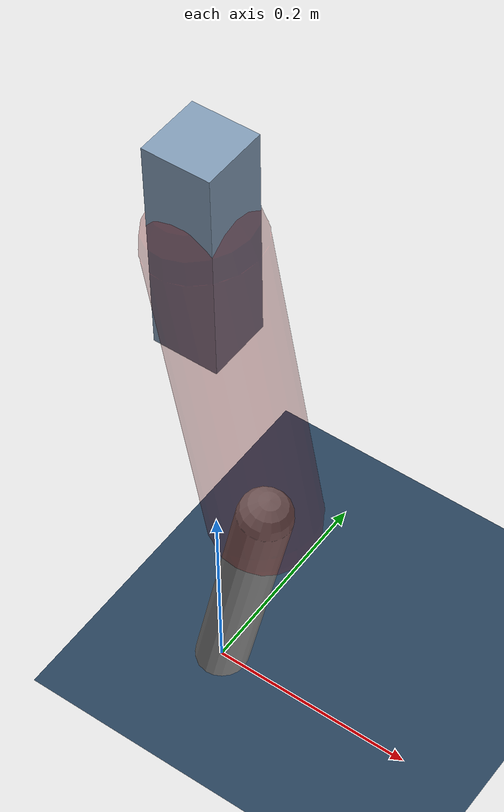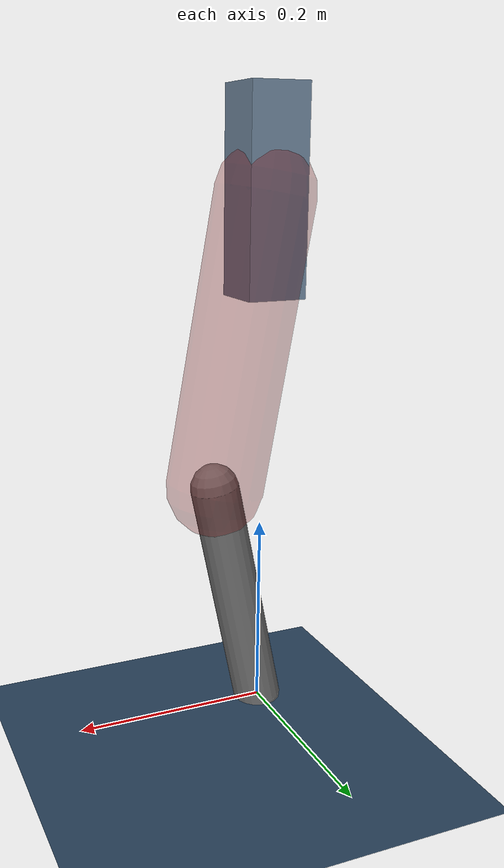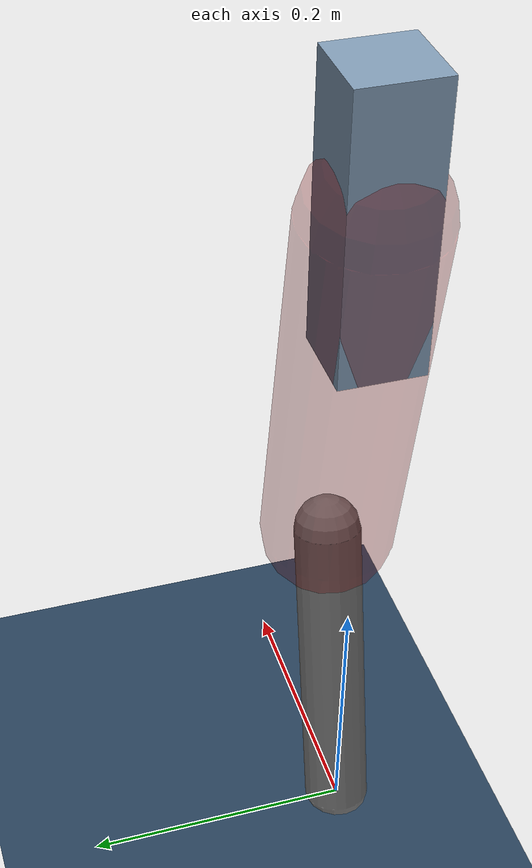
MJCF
<mujoco model="Hopper2D">
	<compiler inertiafromgeom="true" angle="radian" />
	<option timestep="0.001" integrator="implicit" cone="elliptic" solver="Newton" tolerance="1e-10" />

	<default>
		<geom contype="1" conaffinity="1" condim="3" friction="2 0.005 0.0001" solref="0.005 1" />
		<joint limited="true" damping="0.1" />
	</default>

	<asset>
		<texture name="skybox" type="skybox" builtin="gradient" rgb1=".4 .6 .8" rgb2="0 0 0" width="800" height="800" />
		<texture name="grid" type="2d" builtin="checker" rgb1=".1 .2 .3" rgb2=".2 .3 .4" width="300" height="300" mark="edge" markrgb=".2 .3 .4" />
		<material name="ground" texture="grid" texrepeat="1 1" texuniform="true" reflectance="0.1" />
		<material name="leg" rgba="0.5 0.6 0.7 1" />
	</asset>

	<worldbody>

		<geom name="floor" type="plane" size="5 5 0.25" material="ground" />

		<light directional="false" diffuse="0.8 0.8 0.8" specular="0.3 0.3 0.3" pos="0 0 2" dir="0 0 -1" />
		<light mode="targetbodycom" target="base" directional="false" diffuse="0.8 0.8 0.8" specular="0.3 0.3 0.3" pos="0 0 2" dir="0 0 -1" />

		<camera name="fixed" pos="0 -2 1" xyaxes="1 0 0 0 0 1" />
		<camera name="tracking" mode="trackcom" pos="0 -3 1" />

		<body name="root" pos="0 0 0.5361206966215188">
			<joint name="slide_x" type="slide" axis="1 0 0" range="-100 100" />
			<joint name="slide_z" type="slide" axis="0 0 1" range="0 10" />

			<body name="base" pos="0 0 0">
				<geom name="torso" type="box" size="0.03 0.03 0.1" mass="2.452" material="leg" />

				<body name="link1" pos="0 0 0" euler="0 1.3945697138309516 0">
					<joint type="hinge" axis="0 -1 0" pos="0 0 0" name="hinge1" limited="true" range="-3.14 3.14" stiffness="0" damping="0.1" />
					<geom name="thigh" type="capsule" fromto="0 0 0 0.29564087270152783 0 0" size="0.05" rgba="0.5 0 0 0.3" mass="0.9769662690239724" />

					<body name="link2" pos="0.29564087270152783 0 0" euler="0 0.3846575116487906 0">
						<joint type="hinge" axis="0 -1 0" pos="0 0 0" name="hinge2" limited="true" range="-3.14 3.14" stiffness="0" damping="0.1" />
						<geom name="shank" type="capsule" fromto="0 0 0 0.2504798239199911 0 0" size="0.025" mass="0.4428838591359929" />

					</body>
				</body>
			</body>
		</body>
	</worldbody>

	<actuator>
		<motor name="torque1" joint="hinge1" ctrlrange="-59.879723144286565 59.879723144286565" ctrllimited="true" gear="1" />
		<motor name="torque2" joint="hinge2" ctrlrange="-124.0753109215489 124.0753109215489" ctrllimited="true" gear="1" />
	</actuator>
</mujoco>
